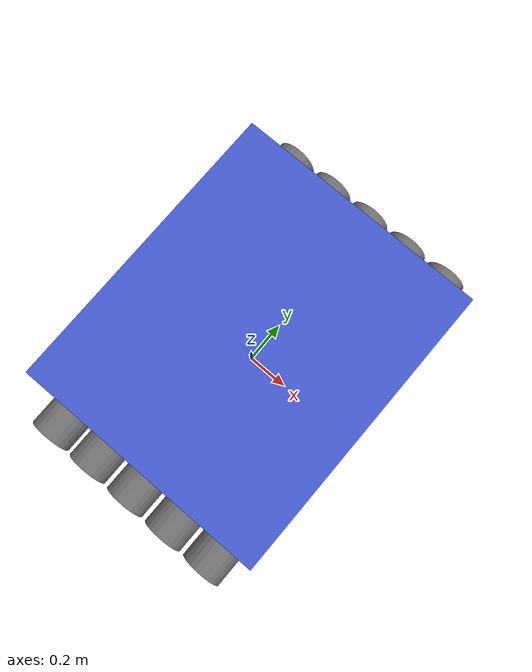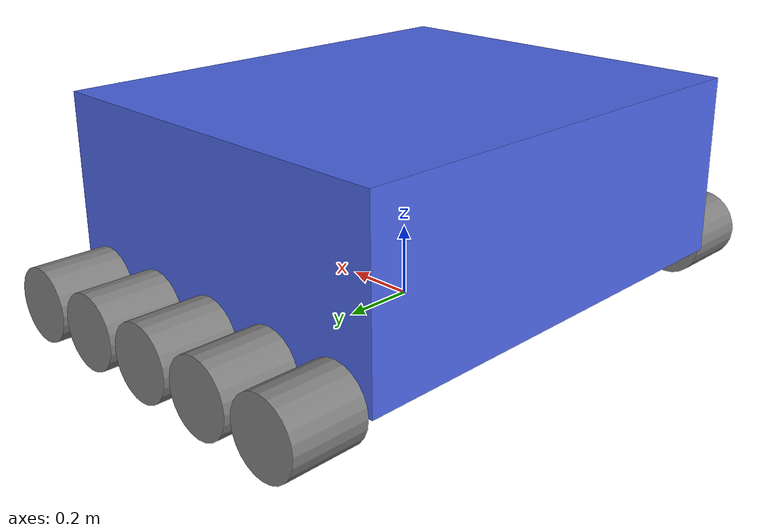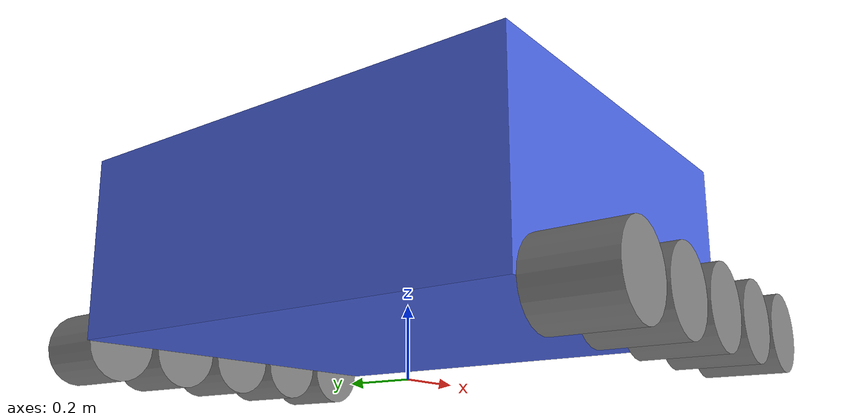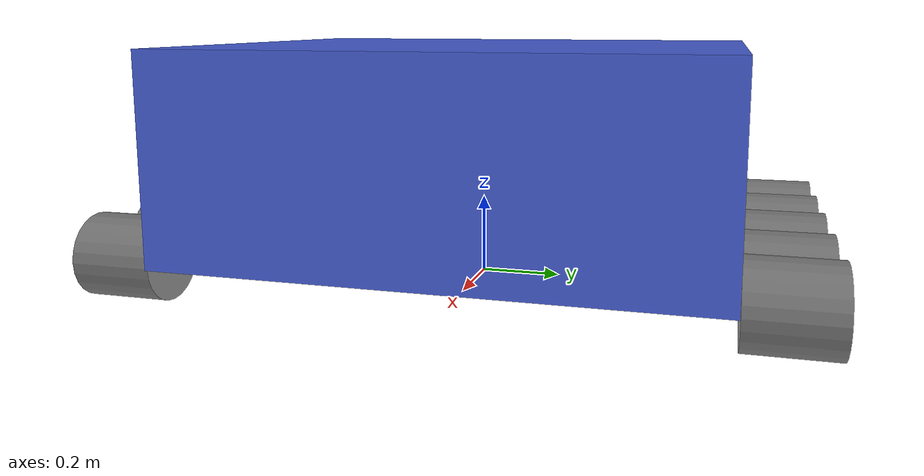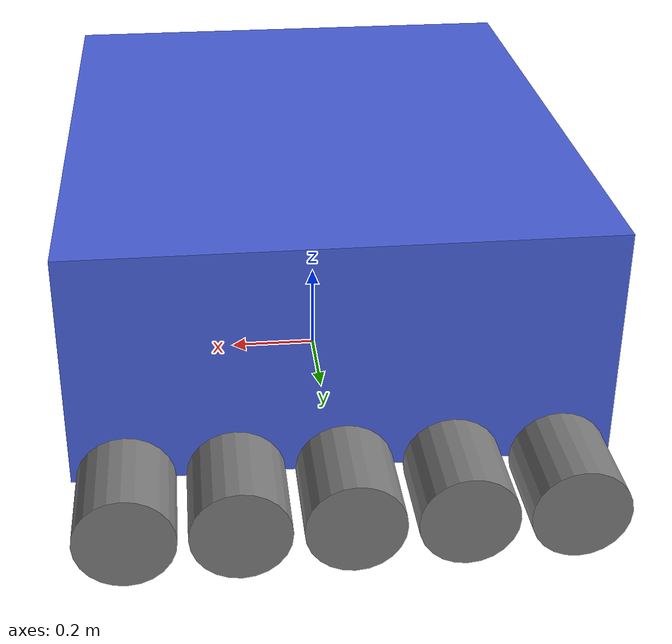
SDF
<?xml version="1.0" ?>
<sdf version="1.9">

  <model name="tracked_v3">
    <static>false</static>
    <pose>0 0 0 0 0 0</pose>

    <link name="base_link">
      <!-- 차체 중심: 지면에서 0.35m 높이에 배치 (바퀴 반지름 0.1m + 0.25m 여유) -->
      <pose>0 0 0.35 0 0 0</pose>

      <inertial>
          <mass>100.0</mass>
          <!-- 차체 1.1m x 1.3m x 0.5m 기준 관성 모멘트: I = (1/12) * m * (w^2 + h^2) -->
          <inertia>
          <ixx>16.25</ixx> <iyy>12.25</iyy> <izz>28.33</izz>
          <ixy>0.0</ixy> <ixz>0.0</ixz> <iyz>0.0</iyz>
          </inertia>
      </inertial>

      <collision name="chassis_collision">
          <geometry>
          <!-- 차체: 길이 1.1m, 폭 1.3m, 높이 0.5m -->
          <box><size>1.1 1.3 0.5</size></box>
          </geometry>
      </collision>

      <visual name="chassis_visual">
          <geometry>
          <box><size>1.1 1.3 0.5</size></box>
          </geometry>
          <material>
          <ambient>0.3 0.4 0.9 1</ambient>
          <diffuse>0.3 0.4 0.9 1</diffuse>
          </material>
      </visual>

      <sensor name="imu_sensor" type="imu">
          <always_on>true</always_on>
          <update_rate>25</update_rate>
          <visualize>false</visualize>
          <topic>imu</topic>
          <pose>0 0 0.25 0 0 0</pose>
          <imu>
            <!-- CAL 계산이 정확한지 확인하려면 아래 스폰 pose(agriculture_v3.sdf)의
                 yaw와 이 노드가 계산해 낸 offset이 서로 부호까지 일치하는지 보면 됨. -->
            <angular_velocity>
              <x>
                <noise type="gaussian">
                  <mean>0.0</mean>
                  <stddev>0.01</stddev>
                </noise>
              </x>
              <y>
                <noise type="gaussian">
                  <mean>0.0</mean>
                  <stddev>0.01</stddev>
                </noise>
              </y>
              <z>
                <noise type="gaussian">
                  <mean>0.0</mean>
                  <stddev>0.01</stddev>
                </noise>
              </z>
            </angular_velocity>
            <linear_acceleration>
              <x>
                <noise type="gaussian">
                  <mean>0.0</mean>
                  <stddev>0.1</stddev>
                </noise>
              </x>
              <y>
                <noise type="gaussian">
                  <mean>0.0</mean>
                  <stddev>0.1</stddev>
                </noise>
              </y>
              <z>
                <noise type="gaussian">
                  <mean>0.0</mean>
                  <stddev>0.1</stddev>
                </noise>
              </z>
            </linear_acceleration>
          </imu>
      </sensor>

      <sensor name="navsat_sensor" type="navsat">
        <always_on>true</always_on>
        <update_rate>1.0</update_rate> <!-- 주파수 현실에 맞게 수정 -->
        <topic>navsat</topic>
        <visualize>false</visualize>
          <pose>0 0 0.25 0 0 0</pose>
      </sensor>

      <sensor name="magnetometer_sensor" type="magnetometer">
        <always_on>true</always_on>
        <update_rate>25.0</update_rate>
        <topic>magnetometer</topic>
          <pose>0 0 0.25 0 0 0</pose>

      </sensor>

      <sensor name="front_depth_camera" type="rgbd_camera">
        <always_on>true</always_on>
        <update_rate>15</update_rate>
        <visualize>true</visualize>
        <topic>front_depth_camera</topic>
        <pose>0.55 0 0.25 0 0 0</pose>
        <camera>
          <horizontal_fov>1.047</horizontal_fov>
          <image>
            <width>640</width>
            <height>480</height>
            <format>R8G8B8</format>
          </image>
          <clip>
            <near>0.1</near>
            <far>10.0</far>
          </clip>
        </camera>
      </sensor>

    </link>

    <link name="wheel_R1_link">
        <!-- 전방 우측 바퀴 1: x=0.44m, y=-0.751m (우측 바깥) -->
        <pose>0.44 -0.751 0.1 1.5708 0 0</pose>

      <visual name="wheel_R1_visual">
        <geometry>
          <cylinder>
            <radius>0.1</radius>
            <length>0.2</length>
          </cylinder>
        </geometry>
        <material>
          <ambient>0.5 0.5 0.5 1</ambient>
          <diffuse>0.5 0.5 0.5 1</diffuse>
          <specular>0.1 0.1 0.1 1</specular>
        </material>
      </visual>

      <collision name="wheel_R1_collision">
        <geometry>
          <cylinder>
            <radius>0.1</radius>
            <length>0.2</length>
          </cylinder>
        </geometry>

        <surface>
          <friction>
            <ode>
              <mu>1.2</mu>
              <mu2>0.7</mu2>
              <fdir1>1 0 0</fdir1>
              <slip1>0.0</slip1>
              <slip2>0.001</slip2>
            </ode>
          </friction>
          <contact>
            <ode>
              <soft_cfm>0.002</soft_cfm>
              <soft_erp>0.002</soft_erp>
              <kp>1000</kp>
              <kd>500</kd>
            </ode>
          </contact>
        </surface>
      </collision>

      <inertial>
        <mass>5.0</mass>
        <inertia>
          <ixx>0.0365</ixx>
          <iyy>0.0365</iyy>
          <izz>0.025</izz>
          <ixy>0</ixy>
          <ixz>0</ixz>
          <iyz>0</iyz>
        </inertia>
      </inertial>
    </link>

    <joint name="wheel_R1_joint" type="revolute">
      <parent>base_link</parent>
      <child>wheel_R1_link</child>

      <pose>0 0 0 0 0 0</pose>

      <axis>
        <xyz>0 0 -1</xyz>

        <limit>
          <lower>-1.79769e+308</lower>
          <upper>1.79769e+308</upper>
          <effort>10000.0</effort>
          <velocity>10000.0</velocity>
        </limit>

        <dynamics>
          <damping>0.1</damping>
          <friction>0.01</friction>
        </dynamics>
      </axis>

      <physics>
        <provide_feedback>true</provide_feedback>
      </physics>

    </joint>

    <link name="wheel_R2_link">
        <!-- 우측 바퀴 2: x=0.22m -->
        <pose>0.22 -0.751 0.1 1.5708 0 0</pose>

      <visual name="wheel_R2_visual">
        <geometry>
          <cylinder>
            <radius>0.1</radius>
            <length>0.2</length>
          </cylinder>
        </geometry>
        <material>
          <ambient>0.5 0.5 0.5 1</ambient>
          <diffuse>0.5 0.5 0.5 1</diffuse>
          <specular>0.1 0.1 0.1 1</specular>
        </material>
      </visual>

      <collision name="wheel_R2_collision">
        <geometry>
          <cylinder>
            <radius>0.1</radius>
            <length>0.2</length>
          </cylinder>
        </geometry>

        <surface>
          <friction>
            <ode>
              <mu>1.2</mu>
              <mu2>0.7</mu2>
              <fdir1>1 0 0</fdir1>
              <slip1>0.0</slip1>
              <slip2>0.001</slip2>
            </ode>
          </friction>
          <contact>
            <ode>
              <soft_cfm>0.002</soft_cfm>
              <soft_erp>0.002</soft_erp>
              <kp>1000</kp>
              <kd>500</kd>
            </ode>
          </contact>
        </surface>
      </collision>

      <inertial>
        <mass>5.0</mass>
        <inertia>
          <ixx>0.0365</ixx>
          <iyy>0.0365</iyy>
          <izz>0.025</izz>
          <ixy>0</ixy>
          <ixz>0</ixz>
          <iyz>0</iyz>
        </inertia>
      </inertial>
    </link>

    <joint name="wheel_R2_joint" type="revolute">
      <parent>base_link</parent>
      <child>wheel_R2_link</child>

      <pose>0 0 0 0 0 0</pose>

      <axis>
        <xyz>0 0 -1</xyz>

        <limit>
          <lower>-1.79769e+308</lower>
          <upper>1.79769e+308</upper>
          <effort>10000.0</effort>
          <velocity>10000.0</velocity>
        </limit>

        <dynamics>
          <damping>0.1</damping>
          <friction>0.01</friction>
        </dynamics>
      </axis>

      <physics>
        <provide_feedback>true</provide_feedback>
      </physics>

    </joint>

    <link name="wheel_R3_link">
        <!-- 우측 바퀴 3: x=0m (중앙) -->
        <pose>0 -0.751 0.1 1.5708 0 0</pose>

            <visual name="wheel_R3_visual">
        <geometry>
          <cylinder>
            <radius>0.1</radius>
            <length>0.2</length>
          </cylinder>
        </geometry>
        <material>
          <ambient>0.5 0.5 0.5 1</ambient>
          <diffuse>0.5 0.5 0.5 1</diffuse>
          <specular>0.1 0.1 0.1 1</specular>
        </material>
      </visual>

      <collision name="wheel_R3_collision">
        <geometry>
          <cylinder>
            <radius>0.1</radius>
            <length>0.2</length>
          </cylinder>
        </geometry>

        <surface>
          <friction>
            <ode>
              <mu>1.2</mu>
              <mu2>0.7</mu2>
              <fdir1>1 0 0</fdir1>
              <slip1>0.0</slip1>
              <slip2>0.001</slip2>
            </ode>
          </friction>
          <contact>
            <ode>
              <soft_cfm>0.002</soft_cfm>
              <soft_erp>0.002</soft_erp>
              <kp>1000</kp>
              <kd>500</kd>
            </ode>
          </contact>
        </surface>
      </collision>

      <inertial>
        <mass>5.0</mass>
        <inertia>
          <ixx>0.0365</ixx>
          <iyy>0.0365</iyy>
          <izz>0.025</izz>
          <ixy>0</ixy>
          <ixz>0</ixz>
          <iyz>0</iyz>
        </inertia>
      </inertial>
    </link>

    <joint name="wheel_R3_joint" type="revolute">
      <parent>base_link</parent>
      <child>wheel_R3_link</child>

      <pose>0 0 0 0 0 0</pose>

      <axis>
        <xyz>0 0 -1</xyz>

        <limit>
          <lower>-1.79769e+308</lower>
          <upper>1.79769e+308</upper>
          <effort>10000.0</effort>
          <velocity>10000.0</velocity>
        </limit>

        <dynamics>
          <damping>0.1</damping>
          <friction>0.01</friction>
        </dynamics>
      </axis>

      <physics>
        <provide_feedback>true</provide_feedback>
      </physics>

    </joint>

    <link name="wheel_R4_link">
        <!-- 우측 바퀴 4: x=-0.22m -->
        <pose>-0.22 -0.751 0.1 1.5708 0 0</pose>

      <visual name="wheel_R4_visual">
        <geometry>
          <cylinder>
            <radius>0.1</radius>
            <length>0.2</length>
          </cylinder>
        </geometry>
        <material>
          <ambient>0.5 0.5 0.5 1</ambient>
          <diffuse>0.5 0.5 0.5 1</diffuse>
          <specular>0.1 0.1 0.1 1</specular>
        </material>
      </visual>

      <collision name="wheel_R4_collision">
        <geometry>
          <cylinder>
            <radius>0.1</radius>
            <length>0.2</length>
          </cylinder>
        </geometry>

        <surface>
          <friction>
            <ode>
              <mu>1.2</mu>
              <mu2>0.7</mu2>
              <fdir1>1 0 0</fdir1>
              <slip1>0.0</slip1>
              <slip2>0.001</slip2>
            </ode>
          </friction>
          <contact>
            <ode>
              <soft_cfm>0.002</soft_cfm>
              <soft_erp>0.002</soft_erp>
              <kp>1000</kp>
              <kd>500</kd>
            </ode>
          </contact>
        </surface>
      </collision>

      <inertial>
        <mass>5.0</mass>
        <inertia>
          <ixx>0.0365</ixx>
          <iyy>0.0365</iyy>
          <izz>0.025</izz>
          <ixy>0</ixy>
          <ixz>0</ixz>
          <iyz>0</iyz>
        </inertia>
      </inertial>
    </link>

    <joint name="wheel_R4_joint" type="revolute">
      <parent>base_link</parent>
      <child>wheel_R4_link</child>

      <pose>0 0 0 0 0 0</pose>

      <axis>
        <xyz>0 0 -1</xyz>

        <limit>
          <lower>-1.79769e+308</lower>
          <upper>1.79769e+308</upper>
          <effort>10000.0</effort>
          <velocity>10000.0</velocity>
        </limit>

        <dynamics>
          <damping>0.1</damping>
          <friction>0.01</friction>
        </dynamics>
      </axis>

      <physics>
        <provide_feedback>true</provide_feedback>
      </physics>

    </joint>

    <link name="wheel_R5_link">
        <!-- 후방 우측 바퀴 5: x=-0.44m (후방) -->
        <pose>-0.44 -0.751 0.1 1.5708 0 0</pose>

      <visual name="wheel_R5_visual">
        <geometry>
          <cylinder>
            <radius>0.1</radius>
            <length>0.2</length>
          </cylinder>
        </geometry>
        <material>
          <ambient>0.5 0.5 0.5 1</ambient>
          <diffuse>0.5 0.5 0.5 1</diffuse>
          <specular>0.1 0.1 0.1 1</specular>
        </material>
      </visual>

      <collision name="wheel_R5_collision">
        <geometry>
          <cylinder>
            <radius>0.1</radius>
            <length>0.2</length>
          </cylinder>
        </geometry>

        <surface>
          <friction>
            <ode>
              <mu>1.2</mu>
              <mu2>0.7</mu2>
              <fdir1>1 0 0</fdir1>
              <slip1>0.0</slip1>
              <slip2>0.001</slip2>
            </ode>
          </friction>
          <contact>
            <ode>
              <soft_cfm>0.002</soft_cfm>
              <soft_erp>0.002</soft_erp>
              <kp>1000</kp>
              <kd>500</kd>
            </ode>
          </contact>
        </surface>
      </collision>

      <inertial>
        <mass>5.0</mass>
        <inertia>
          <ixx>0.0365</ixx>
          <iyy>0.0365</iyy>
          <izz>0.025</izz>
          <ixy>0</ixy>
          <ixz>0</ixz>
          <iyz>0</iyz>
        </inertia>
      </inertial>
    </link>

    <joint name="wheel_R5_joint" type="revolute">
      <parent>base_link</parent>
      <child>wheel_R5_link</child>

      <pose>0 0 0 0 0 0</pose>

      <axis>
        <xyz>0 0 -1</xyz>

        <limit>
          <lower>-1.79769e+308</lower>
          <upper>1.79769e+308</upper>
          <effort>10000.0</effort>
          <velocity>10000.0</velocity>
        </limit>

        <dynamics>
          <damping>0.1</damping>
          <friction>0.01</friction>
        </dynamics>
      </axis>

      <physics>
        <provide_feedback>true</provide_feedback>
      </physics>

    </joint>

    <link name="wheel_L1_link">
        <!-- 전방 좌측 바퀴 1: x=0.44m (전방), y=0.751m (좌측 바깥) -->
        <pose>0.44 0.751 0.1 1.5708 0 0</pose>

      <visual name="wheel_L1_visual">
        <geometry>
          <cylinder>
            <radius>0.1</radius>
            <length>0.2</length>
          </cylinder>
        </geometry>
        <material>
          <ambient>0.5 0.5 0.5 1</ambient>
          <diffuse>0.5 0.5 0.5 1</diffuse>
          <specular>0.1 0.1 0.1 1</specular>
        </material>
      </visual>

      <collision name="wheel_L1_collision">
        <geometry>
          <cylinder>
            <radius>0.1</radius>
            <length>0.2</length>
          </cylinder>
        </geometry>

        <surface>
          <friction>
            <ode>
              <mu>1.2</mu>
              <mu2>0.7</mu2>
              <fdir1>1 0 0</fdir1>
              <slip1>0.0</slip1>
              <slip2>0.001</slip2>
            </ode>
          </friction>
          <contact>
            <ode>
              <soft_cfm>0.002</soft_cfm>
              <soft_erp>0.002</soft_erp>
              <kp>1000</kp>
              <kd>500</kd>
            </ode>
          </contact>
        </surface>
      </collision>

      <inertial>
        <mass>5.0</mass>
        <inertia>
          <ixx>0.0365</ixx>
          <iyy>0.0365</iyy>
          <izz>0.025</izz>
          <ixy>0</ixy>
          <ixz>0</ixz>
          <iyz>0</iyz>
        </inertia>
      </inertial>
    </link>

    <joint name="wheel_L1_joint" type="revolute">
      <parent>base_link</parent>
      <child>wheel_L1_link</child>

      <pose>0 0 0 0 0 0</pose>

      <axis>
        <xyz>0 0 -1</xyz>

        <limit>
          <lower>-1.79769e+308</lower>
          <upper>1.79769e+308</upper>
          <effort>10000.0</effort>
          <velocity>10000.0</velocity>
        </limit>

        <dynamics>
          <damping>0.1</damping>
          <friction>0.01</friction>
        </dynamics>
      </axis>

      <physics>
        <provide_feedback>true</provide_feedback>
      </physics>

    </joint>

    <link name="wheel_L2_link">
        <!-- 좌측 바퀴 2: x=0.22m -->
        <pose>0.22 0.751 0.1 1.5708 0 0</pose>

      <visual name="wheel_L2_visual">
        <geometry>
          <cylinder>
            <radius>0.1</radius>
            <length>0.2</length>
          </cylinder>
        </geometry>
        <material>
          <ambient>0.5 0.5 0.5 1</ambient>
          <diffuse>0.5 0.5 0.5 1</diffuse>
          <specular>0.1 0.1 0.1 1</specular>
        </material>
      </visual>

      <collision name="wheel_L2_collision">
        <geometry>
          <cylinder>
            <radius>0.1</radius>
            <length>0.2</length>
          </cylinder>
        </geometry>

        <surface>
          <friction>
            <ode>
              <mu>1.2</mu>
              <mu2>0.7</mu2>
              <fdir1>1 0 0</fdir1>
              <slip1>0.0</slip1>
              <slip2>0.001</slip2>
            </ode>
          </friction>
          <contact>
            <ode>
              <soft_cfm>0.002</soft_cfm>
              <soft_erp>0.002</soft_erp>
              <kp>1000</kp>
              <kd>500</kd>
            </ode>
          </contact>
        </surface>
      </collision>

      <inertial>
        <mass>5.0</mass>
        <inertia>
          <ixx>0.0365</ixx>
          <iyy>0.0365</iyy>
          <izz>0.025</izz>
          <ixy>0</ixy>
          <ixz>0</ixz>
          <iyz>0</iyz>
        </inertia>
      </inertial>
    </link>

    <joint name="wheel_L2_joint" type="revolute">
      <parent>base_link</parent>
      <child>wheel_L2_link</child>

      <pose>0 0 0 0 0 0</pose>

      <axis>
        <xyz>0 0 -1</xyz>

        <limit>
          <lower>-1.79769e+308</lower>
          <upper>1.79769e+308</upper>
          <effort>10000.0</effort>
          <velocity>10000.0</velocity>
        </limit>

        <dynamics>
          <damping>0.1</damping>
          <friction>0.01</friction>
        </dynamics>
      </axis>

      <physics>
        <provide_feedback>true</provide_feedback>
      </physics>

    </joint>

    <link name="wheel_L3_link">
        <!-- 좌측 바퀴 3: x=0m (중앙) -->
        <pose>0 0.751 0.1 1.5708 0 0</pose>

            <visual name="wheel_L3_visual">
        <geometry>
          <cylinder>
            <radius>0.1</radius>
            <length>0.2</length>
          </cylinder>
        </geometry>
        <material>
          <ambient>0.5 0.5 0.5 1</ambient>
          <diffuse>0.5 0.5 0.5 1</diffuse>
          <specular>0.1 0.1 0.1 1</specular>
        </material>
      </visual>

      <collision name="wheel_L3_collision">
        <geometry>
          <cylinder>
            <radius>0.1</radius>
            <length>0.2</length>
          </cylinder>
        </geometry>

        <surface>
          <friction>
            <ode>
              <mu>1.2</mu>
              <mu2>0.7</mu2>
              <fdir1>1 0 0</fdir1>
              <slip1>0.0</slip1>
              <slip2>0.001</slip2>
            </ode>
          </friction>
          <contact>
            <ode>
              <soft_cfm>0.002</soft_cfm>
              <soft_erp>0.002</soft_erp>
              <kp>1000</kp>
              <kd>500</kd>
            </ode>
          </contact>
        </surface>
      </collision>

      <inertial>
        <mass>5.0</mass>
        <inertia>
          <ixx>0.0365</ixx>
          <iyy>0.0365</iyy>
          <izz>0.025</izz>
          <ixy>0</ixy>
          <ixz>0</ixz>
          <iyz>0</iyz>
        </inertia>
      </inertial>
    </link>

    <joint name="wheel_L3_joint" type="revolute">
      <parent>base_link</parent>
      <child>wheel_L3_link</child>

      <pose>0 0 0 0 0 0</pose>

      <axis>
        <xyz>0 0 -1</xyz>

        <limit>
          <lower>-1.79769e+308</lower>
          <upper>1.79769e+308</upper>
          <effort>10000.0</effort>
          <velocity>10000.0</velocity>
        </limit>

        <dynamics>
          <damping>0.1</damping>
          <friction>0.01</friction>
        </dynamics>
      </axis>

      <physics>
        <provide_feedback>true</provide_feedback>
      </physics>

    </joint>

    <link name="wheel_L4_link">
        <!-- 좌측 바퀴 4: x=-0.22m -->
        <pose>-0.22 0.751 0.1 1.5708 0 0</pose>

            <visual name="wheel_L4_visual">
        <geometry>
          <cylinder>
            <radius>0.1</radius>
            <length>0.2</length>
          </cylinder>
        </geometry>
        <material>
          <ambient>0.5 0.5 0.5 1</ambient>
          <diffuse>0.5 0.5 0.5 1</diffuse>
          <specular>0.1 0.1 0.1 1</specular>
        </material>
      </visual>

      <collision name="wheel_L4_collision">
        <geometry>
          <cylinder>
            <radius>0.1</radius>
            <length>0.2</length>
          </cylinder>
        </geometry>

        <surface>
          <friction>
            <ode>
              <mu>1.2</mu>
              <mu2>0.7</mu2>
              <fdir1>1 0 0</fdir1>
              <slip1>0.0</slip1>
              <slip2>0.001</slip2>
            </ode>
          </friction>
          <contact>
            <ode>
              <soft_cfm>0.002</soft_cfm>
              <soft_erp>0.002</soft_erp>
              <kp>1000</kp>
              <kd>500</kd>
            </ode>
          </contact>
        </surface>
      </collision>

      <inertial>
        <mass>5.0</mass>
        <inertia>
          <ixx>0.0365</ixx>
          <iyy>0.0365</iyy>
          <izz>0.025</izz>
          <ixy>0</ixy>
          <ixz>0</ixz>
          <iyz>0</iyz>
        </inertia>
      </inertial>
    </link>

    <joint name="wheel_L4_joint" type="revolute">
      <parent>base_link</parent>
      <child>wheel_L4_link</child>

      <pose>0 0 0 0 0 0</pose>

      <axis>
        <xyz>0 0 -1</xyz>

        <limit>
          <lower>-1.79769e+308</lower>
          <upper>1.79769e+308</upper>
          <effort>10000.0</effort>
          <velocity>10000.0</velocity>
        </limit>

        <dynamics>
          <damping>0.1</damping>
          <friction>0.01</friction>
        </dynamics>
      </axis>

      <physics>
        <provide_feedback>true</provide_feedback>
      </physics>

    </joint>

    <link name="wheel_L5_link">
        <!-- 후방 좌측 바퀴 5: x=-0.44m (후방) -->
        <pose>-0.44 0.751 0.1 1.5708 0 0</pose>

      <visual name="wheel_L5_visual">
        <geometry>
          <cylinder>
            <radius>0.1</radius>
            <length>0.2</length>
          </cylinder>
        </geometry>
        <material>
          <ambient>0.5 0.5 0.5 1</ambient>
          <diffuse>0.5 0.5 0.5 1</diffuse>
          <specular>0.1 0.1 0.1 1</specular>
        </material>
      </visual>

      <collision name="wheel_L5_collision">
        <geometry>
          <cylinder>
            <radius>0.1</radius>
            <length>0.2</length>
          </cylinder>
        </geometry>

        <surface>
          <friction>
            <ode>
              <mu>1.2</mu>
              <mu2>0.7</mu2>
              <fdir1>1 0 0</fdir1>
              <slip1>0.0</slip1>
              <slip2>0.001</slip2>
            </ode>
          </friction>
          <contact>
            <ode>
              <soft_cfm>0.002</soft_cfm>
              <soft_erp>0.002</soft_erp>
              <kp>1000</kp>
              <kd>500</kd>
            </ode>
          </contact>
        </surface>
      </collision>

      <inertial>
        <mass>5.0</mass>
        <inertia>
          <ixx>0.0365</ixx>
          <iyy>0.0365</iyy>
          <izz>0.025</izz>
          <ixy>0</ixy>
          <ixz>0</ixz>
          <iyz>0</iyz>
        </inertia>
      </inertial>
    </link>

    <joint name="wheel_L5_joint" type="revolute">
      <parent>base_link</parent>
      <child>wheel_L5_link</child>

      <pose>0 0 0 0 0 0</pose>

      <axis>
        <xyz>0 0 -1</xyz>

        <limit>
          <lower>-1.79769e+308</lower>
          <upper>1.79769e+308</upper>
          <effort>10000.0</effort>
          <velocity>10000.0</velocity>
        </limit>

        <dynamics>
          <damping>0.1</damping>
          <friction>0.01</friction>
        </dynamics>
      </axis>

      <physics>
        <provide_feedback>true</provide_feedback>
      </physics>

    </joint>

  </model>
</sdf>
